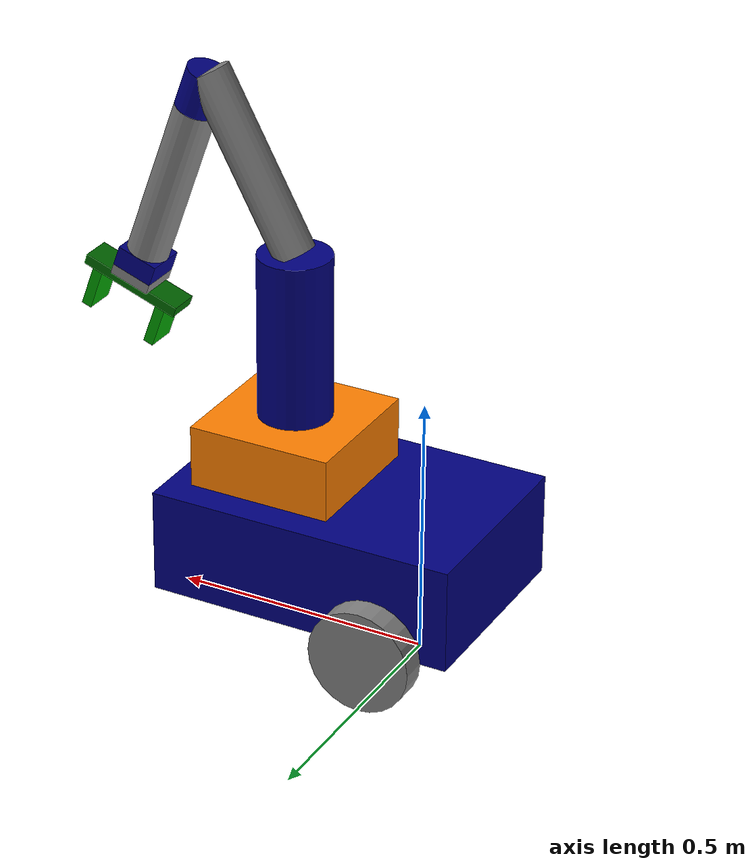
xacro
<?xml version="1.0"?>
<robot name="my_robot" xmlns:xacro="http://www.ros.org.wiki/xacro">
    <!-- 是否包含 DetachableJoint 吸附插件（仿真用；见 gripper.gazebo.xacro）。
         默认关：该插件在 Configure 阶段就会把方块与夹爪连起来，需要额外处理，
         所以只有明确需要时（由 my_robot_gazebo.launch.xml 的 use_detachable
         参数传进来）才打开。 -->
    <xacro:arg name="use_detachable" default="false"/>

    <xacro:include filename="common_properties.xacro"/>
    <xacro:include filename="mobile_base.xacro" />
    <xacro:include filename="mobile_base_gazebo.xacro" />
    <xacro:include filename="lidar.xacro" />
    <xacro:include filename="camera.xacro" />
    <xacro:include filename="arm.urdf.xacro" />
    <xacro:include filename="arm.gazebo.xacro" />

    <xacro:include filename="my_robot.ros2_control.xacro" />
</robot>

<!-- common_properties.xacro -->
<robot xmlns:xacro="http://www.ros.org.wiki/xacro">
     <material name="blue">
        <color rgba="0.0 0.0 0.5 1.0"/>
    </material>

    <material name="grey">
        <color rgba="0.5 0.5 0.5 1.0"/>
    </material>

    <material name="orange">
        <color rgba="1.0 0.5 0.0 1.0"/>
    </material>

    <material name="dark_green">
        <color rgba="0 0.4 0 1"/>
    </material>

    <material name="light_green">
        <color rgba="0 0.6 0 1"/>
    </material>

    <xacro:macro name="box_inertia" params="m x y z o_xyz o_rpy">
        <inertial>
            <mass value="${m}"/>
            <origin xyz="${o_xyz}" rpy="${o_rpy}" />
            <inertia ixx="${(m/12)*(y*y +z*z)}" ixy="0.0" ixz="0.0"
                     iyy="${(m/12)*(x*x +z*z)}" iyz="0.0"
                     izz="${(m/12)*(x*x +y*y)}"/>
        </inertial>
    </xacro:macro>

    <xacro:macro name="cylinder_inertia" params="m r h o_xyz o_rpy">
        <inertial>
            <mass value="${m}"/>
            <origin xyz="${o_xyz}" rpy="${o_rpy}" />
            <inertia ixx="${(m/12)*(3*r*r +h*h)}" ixy="0.0" ixz="0.0"
                     iyy="${(m/12)*(3*r*r +h*h)}" iyz="0.0"
                     izz="${(m/2)*(r*r)}"/>
        </inertial>
    </xacro:macro>

    <xacro:macro name="sphere_inertia" params="m r o_xyz o_rpy">
        <inertial>
            <mass value="${m}"/>
            <origin xyz="${o_xyz}" rpy="${o_rpy}" />
            <inertia ixx="${(m/5.0*2.0)*(r*r)}" ixy="0.0" ixz="0.0"
                     iyy="${(m/5.0*2.0)*(r*r)}" iyz="0.0"
                     izz="${(m/5.0*2.0)*(r*r)}"/>
        </inertial>
    </xacro:macro>
</robot>

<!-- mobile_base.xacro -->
<robot xmlns:xacro="http://www.ros.org.wiki/xacro">
    <xacro:property name="base_length" value="0.6" />
    <xacro:property name="base_width" value="0.4" />
    <xacro:property name="base_height" value="0.2" />
    <xacro:property name="wheel_radius" value="0.1" />
    <xacro:property name="wheel_length" value="0.05" />

    <link name="base_footlink">
    </link>

    <link name="base_link">
        <visual>
            <geometry>
                <box size="${base_length} ${base_width} ${base_height}"/>
            </geometry>
            <origin xyz="0.0 0.0 ${base_height/2.0}" rpy="0.0 0.0 0.0"/>
            <material name="blue" />
        </visual>

        <collision>
            <geometry>
                <box size="${base_length} ${base_width} ${base_height}"/>
            </geometry>
            <origin xyz="0.0 0.0 ${base_height/2.0}" rpy="0.0 0.0 0.0"/>
        </collision>

        <xacro:box_inertia m="15.0" x="${base_length}" y="${base_width}" z="${base_height}"
                           o_xyz="0.0 0.0 ${base_height/2.0}" o_rpy="0 0 0" />
    </link>

    <xacro:macro name="wheel_link" params="prefix">
        <link name="${prefix}_wheel_link">
            <visual>
                <geometry>
                    <cylinder radius="${wheel_radius}" length="${wheel_length}" />
                </geometry>
                <origin xyz="0.0 0.0 0.0" rpy="${pi/2} 0.0 0.0" />
                <material name = "grey"/>
            </visual>

            <collision>
                <geometry>
                    <sphere radius="${wheel_radius}"/>
                </geometry>
                <origin xyz="0.0 0.0 0.0" rpy="0 0 0" />
            </collision>

            <xacro:cylinder_inertia m="1.0" r="${wheel_radius}" h="${wheel_length}"
                                o_xyz="0.0 0.0 0.0" o_rpy="${pi/2} 0.0 0.0" />
        </link>
    </xacro:macro>

    <xacro:wheel_link prefix="right" />
    <xacro:wheel_link prefix="left" />

    <link name="caster_wheel_link">
        <visual>
            <geometry>
                <sphere radius="${wheel_radius/2.0}"/>
            </geometry>
            <origin xyz="0.0 0.0 0.0" rpy="0 0.0 0.0" />
            <material name = "grey"/>
        </visual>

        <collision>
             <geometry>
                <sphere radius="${wheel_radius/2.0}"/>
            </geometry>
            <origin xyz="0.0 0.0 0.0" rpy="0 0 0" />
        </collision>

        <xacro:sphere_inertia m="0.5" r="${wheel_radius/2.0}"
                                o_xyz="0.0 0.0 0.0" o_rpy="0.0 0.0 0.0" />
    </link>

    <joint name="base_joint" type="fixed">
        <parent link="base_footlink"/>
        <child link="base_link"/>
        <origin xyz="${base_length/4.0} 0 ${wheel_radius}" rpy="0.0 0.0 0.0"/>
    </joint>

    <joint name="base_right_wheel_joint" type="continuous">
        <parent link="base_link"/>
        <child link="right_wheel_link"/>
        <origin xyz="${-base_length/4.0} -0.225 0.0" rpy="0.0 0.0 0.0"/>
        <axis xyz="0.0 1.0 0.0"/>
    </joint>

     <joint name="base_left_wheel_joint" type="continuous">
        <parent link="base_link"/>
        <child link="left_wheel_link"/>
        <origin xyz="${-base_length/4.0} 0.225 0.0" rpy="0.0 0.0 0.0"/>
        <axis xyz="0.0 1.0 0.0"/>
    </joint>

    <joint name="base_caster_wheel_joint" type="fixed">
        <parent link="base_link"/>
        <child link="caster_wheel_link"/>
        <origin xyz="0.2 0.0 -0.05" rpy="0.0 0.0 0.0"/>
        <axis xyz="0.0 1.0 0.0"/>
    </joint>
</robot>

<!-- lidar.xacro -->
<robot xmlns:xacro="http://www.ros.org.wiki/xacro">

    <xacro:property name="lidar_length" value="0.01" />
    <xacro:property name="lidar_radius" value="0.025" />

    <link name="lidar_link">
        <visual>
            <geometry>
                <cylinder radius="${lidar_radius}" length="${lidar_length}"/>
            </geometry>
            <material name="orange"/>
        </visual>
        <collision>
            <geometry>
                <cylinder radius="${lidar_radius}" length="${lidar_length}"/>
            </geometry>
        </collision>
        <xacro:cylinder_inertia m="0.01" r="${lidar_radius}" h="${lidar_length}" o_xyz="0 0 0" o_rpy="0 0 0"/>
    </link>

    <joint name="base_lidar_joint" type="fixed">
        <parent link="base_link"/>
        <child link="lidar_link"/>
        <origin xyz="${base_length/2.0} 0.0 ${base_height/3.0*2.0}" rpy="0.0 0.0 0.0"/>
    </joint>

    <gazebo reference="lidar_link">
        <sensor name="gpu_lidar" type="gpu_lidar">
            <update_rate>10</update_rate>
            <ray>
                <scan>
                    <horizontal>
                        <samples>360</samples>
                        <resolution>1</resolution>
                        <min_angle>-3.14159</min_angle>
                        <max_angle>3.14159</max_angle>
                    </horizontal>
                </scan>
                <range>
                    <min>0.1</min>
                    <max>10.0</max>
                </range>
                <noise>
                    <type>gaussian</type>
                    <mean>0.0</mean>
                    <stddev>0.01</stddev>
                </noise>
            </ray>
            <always_on>1</always_on>
            <visualize>true</visualize>
            <topic>scan</topic>
        </sensor>
    </gazebo>
</robot>

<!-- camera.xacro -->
<robot xmlns:xacro="http://www.ros.org.wiki/xacro">

    <xacro:property name="camera_length" value="0.01" />
    <xacro:property name="camera_width" value="0.1" />
    <xacro:property name="camera_height" value="0.05" />

    <xacro:property name="camera_pitch" value="-0.36" />

    <link name="camera_link">
        <visual>
            <geometry>
                <box size="${camera_length} ${camera_width} ${camera_height}"/>
            </geometry>
            <origin xyz="0.0 0.0 0.0" rpy="0.0 0.0 0.0"/>
            <material name="grey" />
        </visual>

        <collision>
            <geometry>
                <box size="${camera_length} ${camera_width} ${camera_height}"/>
            </geometry>
        </collision>

        <xacro:box_inertia m="0.1" x="${camera_length}" y="${camera_width}" z="${camera_height}"
                           o_xyz="0.0 0.0 0.0" o_rpy="0 0 0" />
    </link>

    <link name="camera_link_optical" />

    <joint name="camera_optical_joint" type="fixed">
        <origin xyz="0.0 0.0 0.0" rpy="${-pi/2} 0.0 ${-pi/2}"/>
        <parent link="camera_link"/>
        <child link="camera_link_optical"/>
    </joint>

    <joint name="base_camera_joint" type="fixed">
        <parent link="base_link"/>
        <child link="camera_link"/>
        <origin xyz="${(base_length + camera_length)/2.0} 0 ${base_height/2.0}"
                rpy="0.0 ${camera_pitch} 0.0"/>
    </joint>

    <gazebo reference="camera_link">
        <sensor name="camera" type="camera">
            <camera>
                <horizontal_fov>1.39626345</horizontal_fov>
                <image>
                    <!-- 1280x960：提高分辨率使远处 ArUco 标签像素更多（约翻倍），更易检测 -->
                    <width>1280</width>
                    <height>960</height>
                    <format>R8G8B8</format>
                </image>
                <clip>
                    <near>0.1</near>
                    <far>15</far>
                </clip>
                <noise>
                    <type>gaussian</type>
                    <mean>0.0</mean>
                    <stddev>0.0</stddev>
                </noise>
                <optical_frame_id>camera_link_optical</optical_frame_id>
                <camera_info_topic>camera/camera_info</camera_info_topic>
            </camera>
            <always_on>1</always_on>
            <update_rate>20</update_rate>
            <visualize>true</visualize>
            <topic>camera/image_raw</topic>
        </sensor>
    </gazebo>
</robot>

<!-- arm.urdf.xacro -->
<robot xmlns:xacro="http://www.ros.org.wiki/xacro">

    <xacro:property name="arm_base_length" value="0.28" />
    <xacro:property name="arm_base_width" value="0.28" />
    <xacro:property name="arm_base_height" value="0.12" />

    <xacro:property name="shoulder_length" value="0.32" />
    <xacro:property name="shoulder_radius" value="0.07" />

    <xacro:property name="arm_length" value="0.36" />
    <xacro:property name="arm_radius" value="0.04" />

    <xacro:property name="elbow_length" value="0.08" />
    <xacro:property name="elbow_radius" value="0.04" />

    <xacro:property name="forearm_length" value="0.32" />
    <xacro:property name="forearm_radius" value="0.04" />

    <xacro:property name="wrist_length" value="0.08" />
    <xacro:property name="wrist_width" value="0.08" />
    <xacro:property name="wrist_height" value="0.04" />

    <xacro:property name="hand_length" value="0.08" />
    <xacro:property name="hand_width" value="0.08" />
    <xacro:property name="hand_height" value="0.02" />

    <link name="arm_base_link">
        <visual>
            <origin xyz="0.0 0.0 ${arm_base_height/2}" rpy="0.0 0.0 0.0"/>
            <geometry>
                <box size="${arm_base_length} ${arm_base_width} ${arm_base_height}"/>
            </geometry>
            <material name="orange" />
        </visual>

        <collision>
            <origin xyz="0.0 0.0 ${arm_base_height/2}" rpy="0.0 0.0 0.0"/>
            <geometry>
                <box size="${arm_base_length} ${arm_base_width} ${arm_base_height}"/>
            </geometry>
        </collision>

        <xacro:box_inertia m="1.5" x="${arm_base_length}" y="${arm_base_width}" z="${arm_base_height}"
                           o_xyz="0.0 0.0 ${arm_base_height/2.0}" o_rpy="0 0 0" />
    </link>

    <link name="shoulder_link">
        <visual>
            <origin xyz="0.0 0.0 ${shoulder_length/2}" rpy="0.0 0.0 0.0"/>
            <geometry>
                <cylinder radius="${shoulder_radius}" length="${shoulder_length}"/>
            </geometry>
            <material name="blue" />
        </visual>

        <collision>
            <origin xyz="0.0 0.0 ${shoulder_length/2}" rpy="0.0 0.0 0.0"/>
            <geometry>
                <cylinder radius="${shoulder_radius}" length="${shoulder_length}"/>
            </geometry>
        </collision>

        <xacro:cylinder_inertia m="0.8" r="${shoulder_radius}" h="${shoulder_length}"
                                o_xyz="0.0 0.0 ${shoulder_length/2.0}" o_rpy="0 0 0" />
    </link>

    <link name="arm_link">
        <visual>
            <origin xyz="0.0 0.0 ${arm_length/2}" rpy="0.0 0.0 0.0"/>
            <geometry>
                <cylinder radius="${arm_radius}" length="${arm_length}"/>
            </geometry>
            <material name="grey" />
        </visual>

        <collision>
            <origin xyz="0.0 0.0 ${arm_length/2}" rpy="0.0 0.0 0.0"/>
            <geometry>
                <cylinder radius="${arm_radius}" length="${arm_length}"/>
            </geometry>
        </collision>

        <xacro:cylinder_inertia m="0.5" r="${arm_radius}" h="${arm_length}"
                                o_xyz="0.0 0.0 ${arm_length/2.0}" o_rpy="0 0 0" />
    </link>

    <link name="elbow_link">
        <visual>
            <origin xyz="0.0 0.0 ${elbow_length/2}" rpy="0.0 0.0 0.0"/>
            <geometry>
                <cylinder radius="${elbow_radius}" length="${elbow_length}"/>
            </geometry>
            <material name="blue" />
        </visual>

        <collision>
            <origin xyz="0.0 0.0 ${elbow_length/2}" rpy="0.0 0.0 0.0"/>
            <geometry>
                <cylinder radius="${elbow_radius}" length="${elbow_length}"/>
            </geometry>
        </collision>

        <xacro:cylinder_inertia m="0.1" r="${elbow_radius}" h="${elbow_length}"
                                o_xyz="0.0 0.0 ${elbow_length/2.0}" o_rpy="0 0 0" />
    </link>

    <link name="forearm_link">
        <visual>
            <origin xyz="0.0 0.0 ${forearm_length/2}" rpy="0.0 0.0 0.0"/>
            <geometry>
                <cylinder radius="${forearm_radius}" length="${forearm_length}"/>
            </geometry>
            <material name="grey" />
        </visual>

        <collision>
            <origin xyz="0.0 0.0 ${forearm_length/2}" rpy="0.0 0.0 0.0"/>
            <geometry>
                <cylinder radius="${forearm_radius}" length="${forearm_length}"/>
            </geometry>
        </collision>

        <xacro:cylinder_inertia m="0.3" r="${forearm_radius}" h="${forearm_length}"
                                o_xyz="0.0 0.0 ${forearm_length/2.0}" o_rpy="0 0 0" />
    </link>

    <link name="wrist_link">
        <visual>
            <origin xyz="0.0 0.0 ${wrist_height/2}" rpy="0.0 0.0 0.0"/>
            <geometry>
                <box size="${wrist_length} ${wrist_width} ${wrist_height}"/>
            </geometry>
            <material name="blue" />
        </visual>
        <collision>
            <origin xyz="0.0 0.0 ${wrist_height/2}" rpy="0.0 0.0 0.0"/>
            <geometry>
                <box size="${wrist_length} ${wrist_width} ${wrist_height}"/>
            </geometry>
        </collision>

        <xacro:box_inertia m="0.1" x="${wrist_length}" y="${wrist_width}" z="${wrist_height}"
                           o_xyz="0.0 0.0 ${wrist_height/2.0}" o_rpy="0 0 0" />
    </link>

    <link name="hand_link">
        <visual>
            <origin xyz="0.0 0.0 ${hand_height/2}" rpy="0.0 0.0 0.0"/>
            <geometry>
                <box size="${hand_length} ${hand_width} ${hand_height}"/>
            </geometry>
            <material name="grey" />
        </visual>
        <collision>
            <origin xyz="0.0 0.0 ${hand_height/2}" rpy="0.0 0.0 0.0"/>
            <geometry>
                <box size="${hand_length} ${hand_width} ${hand_height}"/>
            </geometry>
        </collision>

        <xacro:box_inertia m="0.1" x="${hand_length}" y="${hand_width}" z="${hand_height}"
                           o_xyz="0.0 0.0 ${hand_height/2.0}" o_rpy="0 0 0" />
    </link>

    <link name="tool_link">
    </link>

    <joint name="base_arm_joint" type="fixed">
        <origin xyz="${base_length/2 - arm_base_length/1.5} 0.0 ${base_height}" rpy="0.0 0.0 0.0"/>
        <parent link="base_link"/>
        <child link="arm_base_link"/>
        <dynamics damping="0.1" friction="0.1"/>
    </joint>

    <joint name="joint1" type="revolute">
        <origin xyz="0.0 0.0 ${arm_base_height}" rpy="0.0 0.0 0.0"/>
        <parent link="arm_base_link"/>
        <child link="shoulder_link"/>
        <axis xyz="0.0 0.0 1"/>
        <limit lower="-3.14" upper="3.14" effort="1000.0" velocity="1.0"/>
        <dynamics damping="0.1" friction="0.1"/>
    </joint>

    <joint name="joint2" type="revolute">
        <origin xyz="0.0 0.0 ${shoulder_length}" rpy="0.0 0.5 0.0"/>
        <parent link="shoulder_link"/>
        <child link="arm_link"/>
        <axis xyz="0.0 1.0 0.0"/>
        <limit lower="-2.5" upper="0.6" effort="1000.0" velocity="1.0"/>
        <dynamics damping="10" friction="10"/>
    </joint>

    <joint name="joint3" type="revolute">
        <origin xyz="0.0 0.0 ${arm_length}" rpy="0.0 2.3 0.0"/>
        <parent link="arm_link"/>
        <child link="elbow_link"/>
        <axis xyz="0.0 1.0 0.0"/>
        <limit lower="-2.5" upper="2.5" effort="1000.0" velocity="1.0"/>
        <dynamics damping="10" friction="10"/>
    </joint>

    <joint name="joint4" type="revolute">
        <origin xyz="0.0 0.0 ${elbow_length}" rpy="0.0 0.0 0.0"/>
        <parent link="elbow_link"/>
        <child link="forearm_link"/>
        <axis xyz="0.0 0.0 1"/>
        <limit lower="-3.14" upper="3.14" effort="1000.0" velocity="1.0"/>
        <dynamics damping="10" friction="10"/>
    </joint>

    <joint name="joint5" type="revolute">
        <origin xyz="0.0 0.0 ${forearm_length}" rpy="0.0 0.0 0.0"/>
        <parent link="forearm_link"/>
        <child link="wrist_link"/>
        <axis xyz="0.0 1.0 0"/>
        <limit lower="-1.57" upper="1.57" effort="1000.0" velocity="1.0"/>
        <dynamics damping="10" friction="2.0"/>
    </joint>

    <joint name="joint6" type="continuous">
        <origin xyz="0.0 0.0 ${wrist_height}" rpy="0.0 0.0 0.0"/>
        <parent link="wrist_link"/>
        <child link="hand_link"/>
        <axis xyz="0.0 0.0 1.0"/>
        <dynamics damping="0.05" friction="0.1"/>
    </joint>

    <joint name="hand_tool_joint" type="fixed">
        <origin xyz="0.0 0.0 ${hand_height}" rpy="0.0 0.0 0.0"/>
        <parent link="hand_link"/>
        <child link="tool_link"/>
        <dynamics damping="0.05" friction="0.1"/>
    </joint>

    <!-- add gripper relative to hand begin-->
    <xacro:include filename="gripper.xacro" />
    <!-- add gripper relative to hand end-->

</robot>

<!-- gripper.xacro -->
<robot xmlns:xacro="http://www.ros.org.wiki/xacro">

    <link name="gripper_base_link">
        <visual>
            <geometry>
                <box size="0.2 0.06 0.02"/>
            </geometry>
            <material name="dark_green"/>
            <origin xyz="0 0 0.01" rpy="0 0 0"/>
        </visual>
        <collision>
            <geometry>
                <box size="0.18 0.05 0.014"/>
            </geometry>
            <material name="dark_green"/>
            <origin xyz="0 0 0.01" rpy="0 0 0"/>
        </collision>

        <xacro:box_inertia m="0.1" x="0.2" y="0.06" z="0.02" o_xyz="0 0 0.01" o_rpy="0 0 0"/>
    </link>

    <link name="gripper_left_finger_link">
        <visual>
            <geometry>
                <box size="0.02 0.06 0.08"/>
            </geometry>
            <material name="light_green"/>
            <origin xyz="0 0 0.04" rpy="0 0 0"/>
        </visual>
        <collision>
            <geometry>
                <box size="0.02 0.06 0.08"/>
            </geometry>
            <material name="light_green"/>
            <origin xyz="0 0 0.04" rpy="0 0 0"/>
        </collision>

        <xacro:box_inertia m="0.05" x="0.02" y="0.06" z="0.08" o_xyz="0 0 0.04" o_rpy="0 0 0"/>
    </link>

    <link name="gripper_right_finger_link">
        <visual>
            <geometry>
                <box size="0.02 0.06 0.08"/>
            </geometry>
            <material name="light_green"/>
            <origin xyz="0 0 0.04" rpy="0 0 0"/>
        </visual>
        <collision>
            <geometry>
                <box size="0.02 0.06 0.08"/>
            </geometry>
            <material name="light_green"/>
            <origin xyz="0 0 0.04" rpy="0 0 0"/>
        </collision>

        <xacro:box_inertia m="0.05" x="0.02" y="0.06" z="0.08" o_xyz="0 0 0.04" o_rpy="0 0 0"/>
    </link>

    <joint name="gripper_base_joint" type="fixed">
        <parent link="tool_link"/>
        <child link="gripper_base_link"/>
        <origin xyz="0 0 0" rpy="0 0 0"/>
    </joint>

    <joint name="gripper_left_finger_joint" type="prismatic">
        <parent link="gripper_base_link"/>
        <child link="gripper_left_finger_link"/>
        <origin xyz="-0.07 0 0.02" rpy="0 0 0"/>
        <axis xyz="1 0 0"/>
        <limit lower="0" upper="0.06" effort="1000" velocity="1.0"/>
    </joint>

    <joint name="gripper_right_finger_joint" type="prismatic">
        <parent link="gripper_base_link"/>
        <child link="gripper_right_finger_link"/>
        <origin xyz="0.07 0 0.02" rpy="0 0 0"/>
        <axis xyz="-1 0 0"/>
        <limit lower="0" upper="0.06" effort="1000" velocity="1.0"/>
    </joint>
</robot>
